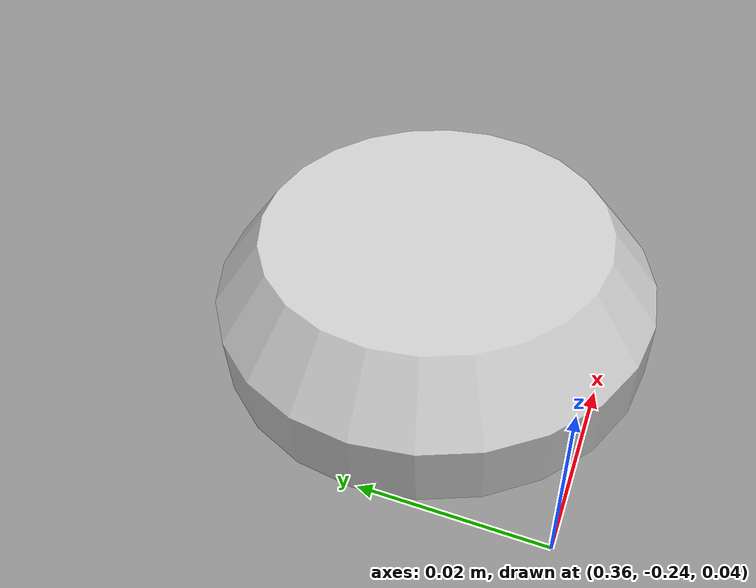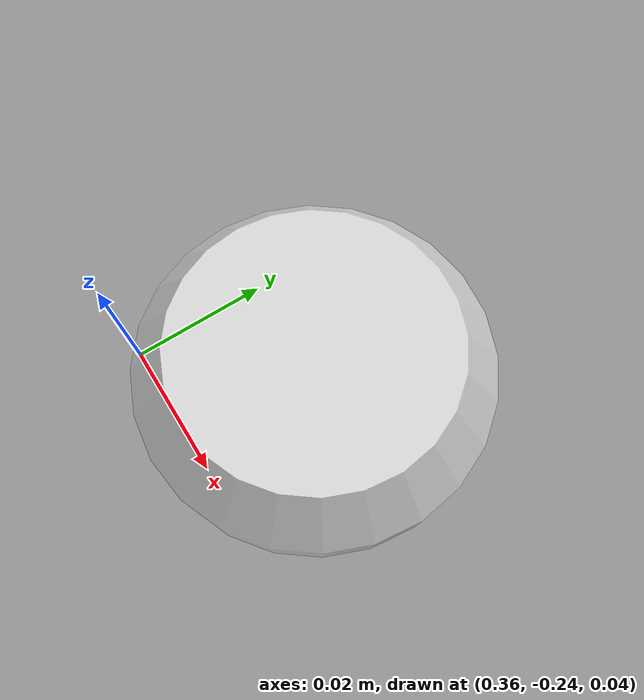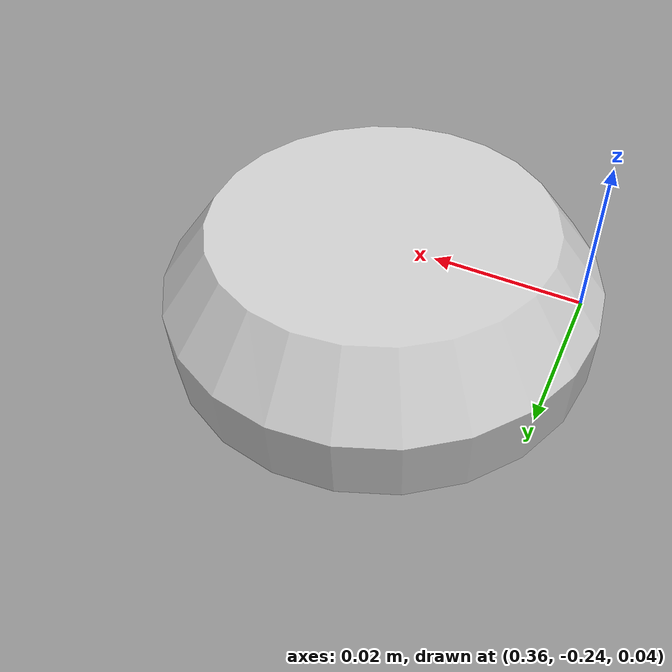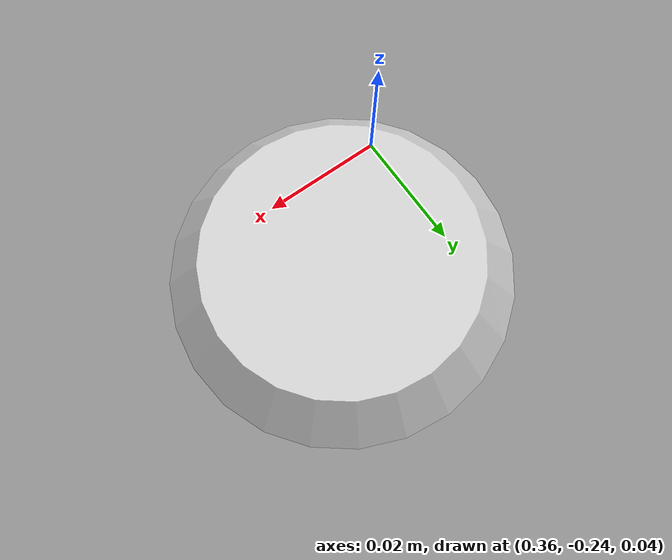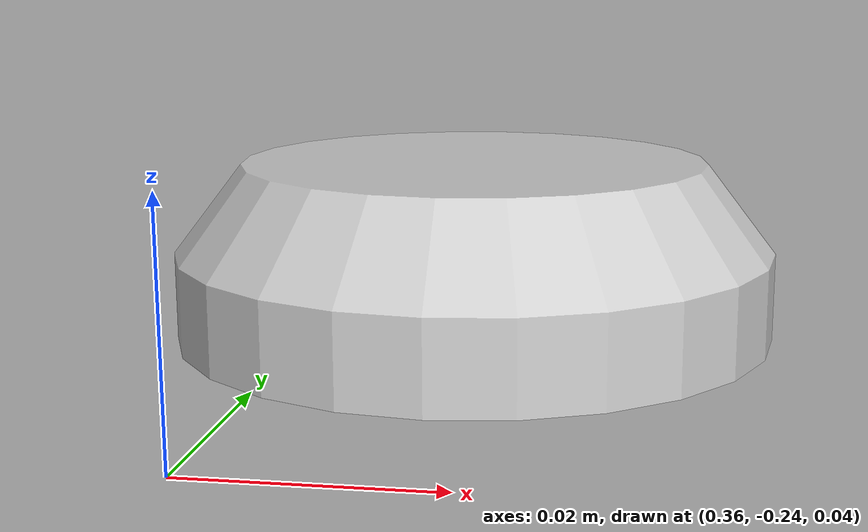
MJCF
<mujoco model="original-32">
  <default>
    <default class="visual">
      <geom group="2" type="mesh" contype="0" conaffinity="0"/>
    </default>
    <default class="collision">
      <geom group="3" type="mesh"/>
    </default>
  </default>
  <asset>
    <material name="material_0_0" specular="0.06666666666666667" shininess="0.03" rgba="0.8 0.8 0.8 1"/>
    <mesh file="original-32.obj"/>
  </asset>
  <worldbody>
    <body name="original-32">
      <geom material="material_0_0" mesh="original-32" class="visual"/>
      <geom mesh="original-32" class="collision"/>
    </body>
  </worldbody>
</mujoco>
